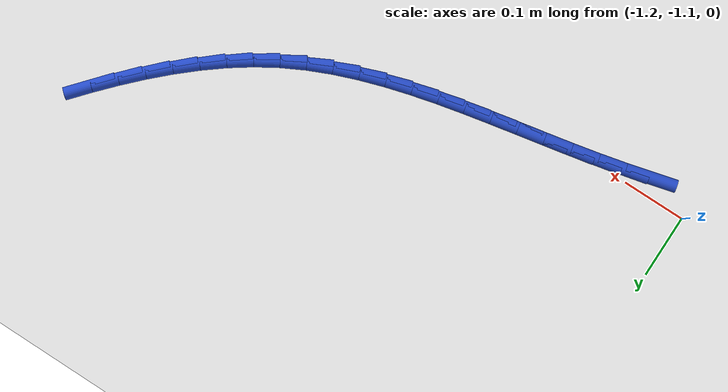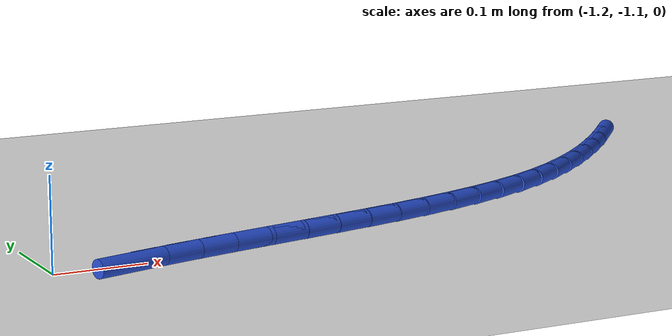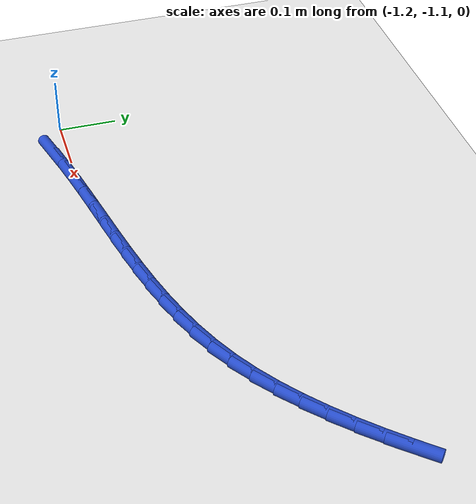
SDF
<sdf version="1.6">
 <world name="default">
  <model name="ground_plane">
   <static>1</static>
   <link name="link">
    <collision name="collision">
     <geometry><plane><normal>0 0 1</normal><size>100 100</size></plane></geometry>
     <surface><friction><ode><mu>100</mu><mu2>50</mu2></ode></friction></surface>
    </collision>
    <visual name="visual">
     <cast_shadows>0</cast_shadows>
     <geometry><plane><normal>0 0 1</normal><size>100 100</size></plane></geometry>
     <material>
      <script><uri>file://media/materials/scripts/gazebo.material</uri><name>Gazebo/WhiteGlow</name></script>
     </material>
    </visual>
   </link>
  </model>
  <model name="line">
   <link name="link_128">
    <pose>-1.1275425669390875 -1.1259092328969775 0.01 0 1.57 0.255836092039325</pose>
    <collision name="collision">
     <geometry><cylinder><radius>0.01</radius><length>0.08</length></cylinder></geometry>
    </collision>
    <visual name="visual">
     <material>
      <script><name>Gazebo/Blue</name><uri>file://media/materials/scripts/gazebo.material</uri></script>
     </material>
     <geometry><cylinder><radius>0.01</radius><length>0.08</length></cylinder></geometry>
    </visual>
   </link>
   <link name="link_129">
    <pose>-1.0856620596770301 -1.1149546377293396 0.01 0 1.57 0.23133878113044962</pose>
    <collision name="collision">
     <geometry><cylinder><radius>0.01</radius><length>0.08</length></cylinder></geometry>
    </collision>
    <visual name="visual">
     <material>
      <script><name>Gazebo/Blue</name><uri>file://media/materials/scripts/gazebo.material</uri></script>
     </material>
     <geometry><cylinder><radius>0.01</radius><length>0.08</length></cylinder></geometry>
    </visual>
   </link>
   <link name="link_130">
    <pose>-1.0436645519929404 -1.1050618735112425 0.01 0 1.57 0.21335758849482991</pose>
    <collision name="collision">
     <geometry><cylinder><radius>0.01</radius><length>0.08</length></cylinder></geometry>
    </collision>
    <visual name="visual">
     <material>
      <script><name>Gazebo/Blue</name><uri>file://media/materials/scripts/gazebo.material</uri></script>
     </material>
     <geometry><cylinder><radius>0.01</radius><length>0.08</length></cylinder></geometry>
    </visual>
   </link>
   <link name="link_131">
    <pose>-1.00165173042067 -1.0959595816988514 0.01 0 1.57 0.20201866795678336</pose>
    <collision name="collision">
     <geometry><cylinder><radius>0.01</radius><length>0.08</length></cylinder></geometry>
    </collision>
    <visual name="visual">
     <material>
      <script><name>Gazebo/Blue</name><uri>file://media/materials/scripts/gazebo.material</uri></script>
     </material>
     <geometry><cylinder><radius>0.01</radius><length>0.08</length></cylinder></geometry>
    </visual>
   </link>
   <link name="link_132">
    <pose>-0.9597255686709333 -1.087372579004784 0.01 0 1.57 0.19738153488918822</pose>
    <collision name="collision">
     <geometry><cylinder><radius>0.01</radius><length>0.08</length></cylinder></geometry>
    </collision>
    <visual name="visual">
     <material>
      <script><name>Gazebo/Blue</name><uri>file://media/materials/scripts/gazebo.material</uri></script>
     </material>
     <geometry><cylinder><radius>0.01</radius><length>0.08</length></cylinder></geometry>
    </visual>
   </link>
   <link name="link_133">
    <pose>-0.9179880404544442 -1.0790256821416588 0.01 0 1.57 0.19954265779401892</pose>
    <collision name="collision">
     <geometry><cylinder><radius>0.01</radius><length>0.08</length></cylinder></geometry>
    </collision>
    <visual name="visual">
     <material>
      <script><name>Gazebo/Blue</name><uri>file://media/materials/scripts/gazebo.material</uri></script>
     </material>
     <geometry><cylinder><radius>0.01</radius><length>0.08</length></cylinder></geometry>
    </visual>
   </link>
   <link name="link_134">
    <pose>-0.8765411194819167 -1.0706437078220954 0.01 0 1.57 0.2086438750790005</pose>
    <collision name="collision">
     <geometry><cylinder><radius>0.01</radius><length>0.08</length></cylinder></geometry>
    </collision>
    <visual name="visual">
     <material>
      <script><name>Gazebo/Blue</name><uri>file://media/materials/scripts/gazebo.material</uri></script>
     </material>
     <geometry><cylinder><radius>0.01</radius><length>0.08</length></cylinder></geometry>
    </visual>
   </link>
   <link name="link_135">
    <pose>-0.8354867794640637 -1.0619514727587107 0.01 0 1.57 0.22487215599516167</pose>
    <collision name="collision">
     <geometry><cylinder><radius>0.01</radius><length>0.08</length></cylinder></geometry>
    </collision>
    <visual name="visual">
     <material>
      <script><name>Gazebo/Blue</name><uri>file://media/materials/scripts/gazebo.material</uri></script>
     </material>
     <geometry><cylinder><radius>0.01</radius><length>0.08</length></cylinder></geometry>
    </visual>
   </link>
   <link name="link_136">
    <pose>-0.794926994111599 -1.052673793664124 0.01 0 1.57 0.24844923008246678</pose>
    <collision name="collision">
     <geometry><cylinder><radius>0.01</radius><length>0.08</length></cylinder></geometry>
    </collision>
    <visual name="visual">
     <material>
      <script><name>Gazebo/Blue</name><uri>file://media/materials/scripts/gazebo.material</uri></script>
     </material>
     <geometry><cylinder><radius>0.01</radius><length>0.08</length></cylinder></geometry>
    </visual>
   </link>
   <link name="link_137">
    <pose>-0.7549637371352379 -1.042535487250954 0.01 0 1.57 0.27960869446249037</pose>
    <collision name="collision">
     <geometry><cylinder><radius>0.01</radius><length>0.08</length></cylinder></geometry>
    </collision>
    <visual name="visual">
     <material>
      <script><name>Gazebo/Blue</name><uri>file://media/materials/scripts/gazebo.material</uri></script>
     </material>
     <geometry><cylinder><radius>0.01</radius><length>0.08</length></cylinder></geometry>
    </visual>
   </link>
   <link name="link_138">
    <pose>-0.7156989822456932 -1.0312613702318187 0.01 0 1.57 0.31855761626298573</pose>
    <collision name="collision">
     <geometry><cylinder><radius>0.01</radius><length>0.08</length></cylinder></geometry>
    </collision>
    <visual name="visual">
     <material>
      <script><name>Gazebo/Blue</name><uri>file://media/materials/scripts/gazebo.material</uri></script>
     </material>
     <geometry><cylinder><radius>0.01</radius><length>0.08</length></cylinder></geometry>
    </visual>
   </link>
   <link name="link_139">
    <pose>-0.6772347031536787 -1.0185762593193368 0.01 0 1.57 0.3654200468552003</pose>
    <collision name="collision">
     <geometry><cylinder><radius>0.01</radius><length>0.08</length></cylinder></geometry>
    </collision>
    <visual name="visual">
     <material>
      <script><name>Gazebo/Blue</name><uri>file://media/materials/scripts/gazebo.material</uri></script>
     </material>
     <geometry><cylinder><radius>0.01</radius><length>0.08</length></cylinder></geometry>
    </visual>
   </link>
   <link name="link_140">
    <pose>-0.6396728735699083 -1.0042049712261265 0.01 0 1.57 0.42016224250495754</pose>
    <collision name="collision">
     <geometry><cylinder><radius>0.01</radius><length>0.08</length></cylinder></geometry>
    </collision>
    <visual name="visual">
     <material>
      <script><name>Gazebo/Blue</name><uri>file://media/materials/scripts/gazebo.material</uri></script>
     </material>
     <geometry><cylinder><radius>0.01</radius><length>0.08</length></cylinder></geometry>
    </visual>
   </link>
   <link name="link_141">
    <pose>-0.6031154672050961 -0.9878723226648066 0.01 0 1.57 0.48250479406452296</pose>
    <collision name="collision">
     <geometry><cylinder><radius>0.01</radius><length>0.08</length></cylinder></geometry>
    </collision>
    <visual name="visual">
     <material>
      <script><name>Gazebo/Blue</name><uri>file://media/materials/scripts/gazebo.material</uri></script>
     </material>
     <geometry><cylinder><radius>0.01</radius><length>0.08</length></cylinder></geometry>
    </visual>
   </link>
   <link name="link_142">
    <pose>-0.567664457769955 -0.969303130347995 0.01 0 1.57 0.5502025308901998</pose>
    <collision name="collision">
     <geometry><cylinder><radius>0.01</radius><length>0.08</length></cylinder></geometry>
    </collision>
    <visual name="visual">
     <material>
      <script><name>Gazebo/Blue</name><uri>file://media/materials/scripts/gazebo.material</uri></script>
     </material>
     <geometry><cylinder><radius>0.01</radius><length>0.08</length></cylinder></geometry>
    </visual>
   </link>
   <link name="link_143">
    <pose>-0.5334001378347474 -0.9482859478213587 0.01 0 1.57 0.613988787043563</pose>
    <collision name="collision">
     <geometry><cylinder><radius>0.01</radius><length>0.08</length></cylinder></geometry>
    </collision>
    <visual name="visual">
     <material>
      <script><name>Gazebo/Blue</name><uri>file://media/materials/scripts/gazebo.material</uri></script>
     </material>
     <geometry><cylinder><radius>0.01</radius><length>0.08</length></cylinder></geometry>
    </visual>
   </link>
   <link name="link_144">
    <pose>-0.5002881937557229 -0.9249462406645254 0.01 0 1.57 0.6709330017469787</pose>
    <collision name="collision">
     <geometry><cylinder><radius>0.01</radius><length>0.08</length></cylinder></geometry>
    </collision>
    <visual name="visual">
     <material>
      <script><name>Gazebo/Blue</name><uri>file://media/materials/scripts/gazebo.material</uri></script>
     </material>
     <geometry><cylinder><radius>0.01</radius><length>0.08</length></cylinder></geometry>
    </visual>
   </link>
   <link name="link_145">
    <pose>-0.46825658402487935 -0.8995203844247235 0.01 0 1.57 0.7212009426242069</pose>
    <collision name="collision">
     <geometry><cylinder><radius>0.01</radius><length>0.08</length></cylinder></geometry>
    </collision>
    <visual name="visual">
     <material>
      <script><name>Gazebo/Blue</name><uri>file://media/materials/scripts/gazebo.material</uri></script>
     </material>
     <geometry><cylinder><radius>0.01</radius><length>0.08</length></cylinder></geometry>
    </visual>
   </link>
   <link name="link_146">
    <pose>-0.4372332442024506 -0.8722448220625157 0.01 0 1.57 0.765082360694009</pose>
    <collision name="collision">
     <geometry><cylinder><radius>0.01</radius><length>0.08</length></cylinder></geometry>
    </collision>
    <visual name="visual">
     <material>
      <script><name>Gazebo/Blue</name><uri>file://media/materials/scripts/gazebo.material</uri></script>
     </material>
     <geometry><cylinder><radius>0.01</radius><length>0.08</length></cylinder></geometry>
    </visual>
   </link>
   <link name="link_147">
    <pose>-0.40714610984867 -0.8433559965384647 0.01 0 1.57 0.8029232853644305</pose>
    <collision name="collision">
     <geometry><cylinder><radius>0.01</radius><length>0.08</length></cylinder></geometry>
    </collision>
    <visual name="visual">
     <material>
      <script><name>Gazebo/Blue</name><uri>file://media/materials/scripts/gazebo.material</uri></script>
     </material>
     <geometry><cylinder><radius>0.01</radius><length>0.08</length></cylinder></geometry>
    </visual>
   </link>
   <link name="link_148">
    <pose>-0.37792311652377264 -0.8130903508131342 0.01 0 1.57 0.8350774800091808</pose>
    <collision name="collision">
     <geometry><cylinder><radius>0.01</radius><length>0.08</length></cylinder></geometry>
    </collision>
    <visual name="visual">
     <material>
      <script><name>Gazebo/Blue</name><uri>file://media/materials/scripts/gazebo.material</uri></script>
     </material>
     <geometry><cylinder><radius>0.01</radius><length>0.08</length></cylinder></geometry>
    </visual>
   </link>
   <link name="link_149">
    <pose>-0.3494921997879919 -0.7816843278470863 0.01 0 1.57 0.8618729644834586</pose>
    <collision name="collision">
     <geometry><cylinder><radius>0.01</radius><length>0.08</length></cylinder></geometry>
    </collision>
    <visual name="visual">
     <material>
      <script><name>Gazebo/Blue</name><uri>file://media/materials/scripts/gazebo.material</uri></script>
     </material>
     <geometry><cylinder><radius>0.01</radius><length>0.08</length></cylinder></geometry>
    </visual>
   </link>
  </model>
 </world>
</sdf>
